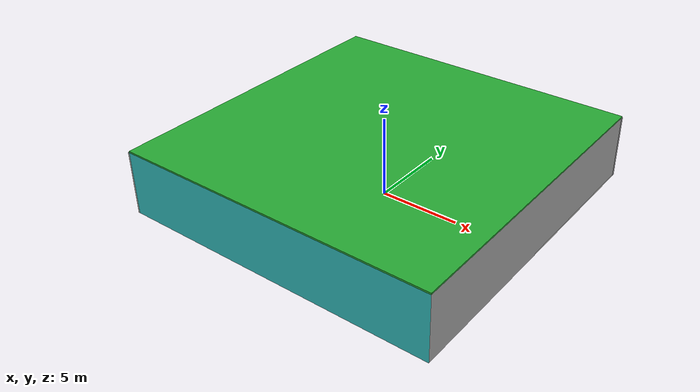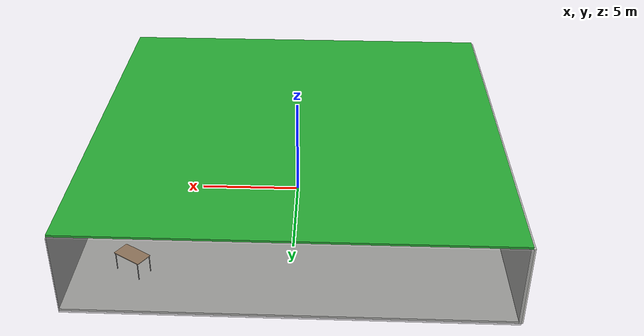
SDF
<sdf version="1.4">
 <world name="default">
  <physics type="ode">
   <max_step_size>0.001</max_step_size>
   <real_time_factor>1</real_time_factor>
   <real_time_update_rate>1000</real_time_update_rate>
   <gravity>0 0 -9.8</gravity>
  </physics>
  <scene><ambient>0.4 0.4 0.4 1</ambient><background>0.7 0.7 0.7 1</background><shadows>1</shadows></scene>
  <model name="Surrounding">
   <static>1</static>
   <link name="Ceiling">
    <collision name="Ceiling_Collision"><geometry><box><size>20 20 0.1</size></box></geometry></collision>
    <visual name="Ceiling_Visual">
     <geometry><box><size>20 20 0.1</size></box></geometry>
     <material>
      <script><uri>file://media/materials/scripts/gazebo.material</uri><name>Gazebo/GreenGlow</name></script>
     </material>
    </visual>
    <pose>0 0 4.05 0 0 0</pose>
   </link>
   <link name="Wall_South">
    <collision name="Wall_South_Collision">
     <geometry><box><size>20 0 4</size></box></geometry>
     <pose>0 0 2 0 -0 0</pose>
    </collision>
    <visual name="Wall_South_Visual">
     <pose>0 0 2 0 -0 0</pose>
     <geometry><box><size>20 0 4</size></box></geometry>
     <material>
      <script><uri>file://media/materials/scripts/gazebo.material</uri><name>Gazebo/Turquoise</name></script>
     </material>
    </visual>
    <velocity_decay><linear>0</linear><angular>0</angular></velocity_decay>
    <pose>0 -10 0 0 -0 0</pose>
   </link>
   <link name="Wall_East">
    <collision name="Wall_21_Collision">
     <geometry><box><size>20 0 4</size></box></geometry>
     <pose>0 0 2 0 -0 0</pose>
    </collision>
    <visual name="Wall_21_Visual">
     <pose>0 0 2 0 -0 0</pose>
     <geometry><box><size>20 0 4</size></box></geometry>
     <material>
      <script><uri>file://media/materials/scripts/gazebo.material</uri><name>Gazebo/PioneerBody</name></script>
     </material>
    </visual>
    <velocity_decay><linear>0</linear><angular>0</angular></velocity_decay>
    <pose>10 0 0 0 -0 1.5708</pose>
   </link>
   <link name="Wall_North">
    <collision name="Wall_22_Collision">
     <geometry><box><size>20 0.2 4</size></box></geometry>
     <pose>0 0 2 0 -0 0</pose>
    </collision>
    <visual name="Wall_22_Visual">
     <pose>0 0 2 0 -0 0</pose>
     <geometry><box><size>20 0.2 4</size></box></geometry>
     <material>
      <script><uri>file://media/materials/scripts/gazebo.material</uri><name>Gazebo/GreyTransparent</name></script>
     </material>
    </visual>
    <velocity_decay><linear>0</linear><angular>0</angular></velocity_decay>
    <pose>0 10 0 0 -0 0</pose>
   </link>
   <link name="Wall_West">
    <collision name="Wall_23_Collision">
     <geometry><box><size>20 0.2 4</size></box></geometry>
     <pose>0 0 2 0 -0 0</pose>
    </collision>
    <visual name="Wall_23_Visual">
     <pose>0 0 2 0 -0 0</pose>
     <geometry><box><size>20 0.2 4</size></box></geometry>
     <material>
      <script><uri>file://media/materials/scripts/gazebo.material</uri><name>Gazebo/CeilingTiled</name></script>
     </material>
    </visual>
    <velocity_decay><linear>0</linear><angular>0</angular></velocity_decay>
    <pose>-10 0 0 0 0 -1.5708</pose>
   </link>
   <link name="Ground_link">
    <collision name="collision">
     <pose>0 0 .05 0 -0 0</pose>
     <geometry><box><size>20 20 0.1</size></box></geometry>
    </collision>
    <visual name="visual">
     <pose>0 0 .05 0 -0 0</pose>
     <geometry><box><size>20 20 0.1</size></box></geometry>
     <material>
      <script><uri>file://media/materials/scripts/gazebo.material</uri><name>Gazebo/CeilingTiled</name></script>
     </material>
    </visual>
   </link>
   <static>1</static>
  </model>
  <spherical_coordinates>
   <surface_model>EARTH_WGS84</surface_model>
   <latitude_deg>0</latitude_deg>
   <longitude_deg>0</longitude_deg>
   <elevation>0</elevation>
   <heading_deg>0</heading_deg>
  </spherical_coordinates>
  <light name="lightball_0" type="diffuse">
   <diffuse>0.8 0.8 0.8 1</diffuse>
   <specular>0.2 0.2 0.2 1</specular>
   <attenuation>
    <range>100</range>
    <constant>0.7</constant>
    <linear>0.01</linear>
    <quadratic>0.001</quadratic>
   </attenuation>
   <direction>-0.5 0.1 -0.9</direction>
   <pose>5.04072717 4.91116172056 3.74500553672 0 0 0</pose>
  </light>
  <light name="lightball_1" type="diffuse">
   <diffuse>0.8 0.8 0.8 1</diffuse>
   <specular>0.2 0.2 0.2 1</specular>
   <attenuation>
    <range>100</range>
    <constant>0.7</constant>
    <linear>0.01</linear>
    <quadratic>0.001</quadratic>
   </attenuation>
   <direction>-0.5 0.1 -0.9</direction>
   <pose>9.10117490745 8.68618808226 1.4735310828 0 0 0</pose>
  </light>
  <light name="lightball_2" type="diffuse">
   <diffuse>0.8 0.8 0.8 1</diffuse>
   <specular>0.2 0.2 0.2 1</specular>
   <attenuation>
    <range>100</range>
    <constant>0.7</constant>
    <linear>0.01</linear>
    <quadratic>0.001</quadratic>
   </attenuation>
   <direction>-0.5 0.1 -0.9</direction>
   <pose>3.24244636727 -2.66610503041 2.77995556639 0 0 0</pose>
  </light>
  <light name="lightball_3" type="diffuse">
   <diffuse>0.8 0.8 0.8 1</diffuse>
   <specular>0.2 0.2 0.2 1</specular>
   <attenuation>
    <range>100</range>
    <constant>0.7</constant>
    <linear>0.01</linear>
    <quadratic>0.001</quadratic>
   </attenuation>
   <direction>-0.5 0.1 -0.9</direction>
   <pose>8.7577806963 3.12345109986 1.2869460033 0 0 0</pose>
  </light>
  <light name="lightball_4" type="diffuse">
   <diffuse>0.8 0.8 0.8 1</diffuse>
   <specular>0.2 0.2 0.2 1</specular>
   <attenuation>
    <range>100</range>
    <constant>0.7</constant>
    <linear>0.01</linear>
    <quadratic>0.001</quadratic>
   </attenuation>
   <direction>-0.5 0.1 -0.9</direction>
   <pose>-3.97331627206 -8.94163442057 2.28829018818 0 0 0</pose>
  </light>
  <light name="lightball_5" type="diffuse">
   <diffuse>0.8 0.8 0.8 1</diffuse>
   <specular>0.2 0.2 0.2 1</specular>
   <attenuation>
    <range>100</range>
    <constant>0.7</constant>
    <linear>0.01</linear>
    <quadratic>0.001</quadratic>
   </attenuation>
   <direction>-0.5 0.1 -0.9</direction>
   <pose>2.35235097821 -5.92058168312 3.3039820592 0 0 0</pose>
  </light>
  <light name="lightball_6" type="diffuse">
   <diffuse>0.8 0.8 0.8 1</diffuse>
   <specular>0.2 0.2 0.2 1</specular>
   <attenuation>
    <range>100</range>
    <constant>0.7</constant>
    <linear>0.01</linear>
    <quadratic>0.001</quadratic>
   </attenuation>
   <direction>-0.5 0.1 -0.9</direction>
   <pose>-9.32447929374 3.26893113501 3.84568607836 0 0 0</pose>
  </light>
  <light name="lightball_7" type="diffuse">
   <diffuse>0.8 0.8 0.8 1</diffuse>
   <specular>0.2 0.2 0.2 1</specular>
   <attenuation>
    <range>100</range>
    <constant>0.7</constant>
    <linear>0.01</linear>
    <quadratic>0.001</quadratic>
   </attenuation>
   <direction>-0.5 0.1 -0.9</direction>
   <pose>-0.664956922512 -8.40086091194 1.16436267897 0 0 0</pose>
  </light>
  <light name="lightball_8" type="diffuse">
   <diffuse>0.8 0.8 0.8 1</diffuse>
   <specular>0.2 0.2 0.2 1</specular>
   <attenuation>
    <range>100</range>
    <constant>0.7</constant>
    <linear>0.01</linear>
    <quadratic>0.001</quadratic>
   </attenuation>
   <direction>-0.5 0.1 -0.9</direction>
   <pose>0.613000948062 1.96153554881 2.4362891305 0 0 0</pose>
  </light>
  <include><uri>model://cabinet</uri><pose>-6.37177762147 -3.76366854147 0 0 0 0.233842357307</pose></include>
  <include>
   <uri>model://robocup_3Dsim_goal</uri>
   <pose>-0.941992980706 -2.01209560454 0 0 0 1.6589440791</pose>
  </include>
  <include>
   <uri>model://construction_cone</uri>
   <pose>-1.88923627946 3.91797071311 0 0 0 2.32023798959</pose>
  </include>
  <include><uri>model://cabinet</uri><pose>5.68471647716 -4.96198955211 0 0 0 0.918413924616</pose></include>
  <include><uri>model://table</uri><pose>3.38816338409 -1.21176546483 0 0 0 1.56736439159</pose></include>
  <include><uri>model://table</uri><pose>7.26985702833 7.19791551671 0 0 0 2.5700005704</pose></include>
 </world>
</sdf>

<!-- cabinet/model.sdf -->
<sdf version="1.5">
  <model name="cabinet">
    <static>true</static>
    <link name="cabinet_bottom_plate">
      <inertial>
        <pose>0 0 -1 0 0 0</pose>
        <inertia>
          <ixx>2.050000</ixx>
          <ixy>0</ixy>
          <ixz>0</ixz>
          <iyy>2.050000</iyy>
          <iyz>0</iyz>
          <izz>2.050000</izz>
        </inertia>
        <mass>25.000000</mass>
      </inertial>
      <collision name="cabinet_bottom_plate_geom">
        <pose>0 0 0.010000 0 0 0</pose>
        <geometry>
          <box>
            <size>0.450000 0.450000 0.020000</size>
          </box>
        </geometry>
      </collision>
      <visual name="cabinet_bottom_plate_geom_visual">
        <pose>0 0 0.010000 0 0 0</pose>
        <geometry>
          <box>
            <size>0.450000 0.450000 0.020000</size>
          </box>
        </geometry>
        <material>
          <script>
            <uri>model://media/materials/scripts/gazebo.material</uri>
            <name>Gazebo/Wood</name>
          </script>
        </material>
      </visual>
      <collision name="cabinet_bottom_plate_geom_cabinet_back_plate">
        <pose>0.235000 0 0.510000 0 0 0</pose>
        <geometry>
          <box>
            <size>0.020000 0.450000 1.020000</size>
          </box>
        </geometry>
      </collision>
      <visual name="cabinet_bottom_plate_geom_cabinet_back_plate_visual">
        <pose>0.235000 0 0.510000 0 0 0</pose>
        <geometry>
          <box>
            <size>0.020000 0.450000 1.020000</size>
          </box>
        </geometry>
        <material>
          <script>
            <uri>model://media/materials/scripts/gazebo.material</uri>
            <name>Gazebo/Wood</name>
          </script>
        </material>
      </visual>
      <collision name="cabinet_bottom_plate_geom_cabinet_left_plate">
        <pose>0 0.235000 0.510000 0 0 0</pose>
        <geometry>
          <box>
            <size>0.450000 0.020000 1.020000</size>
          </box>
        </geometry>
      </collision>
      <visual name="cabinet_bottom_plate_geom_cabinet_left_plate_visual">
        <pose>0 0.235000 0.510000 0 0 0</pose>
        <geometry>
          <box>
            <size>0.450000 0.020000 1.020000</size>
          </box>
        </geometry>
        <material>
          <script>
            <uri>model://media/materials/scripts/gazebo.material</uri>
            <name>Gazebo/Wood</name>
          </script>
        </material>
      </visual>
      <collision name="cabinet_bottom_plate_geom_cabinet_middle_plate">
        <pose>0 0 0.510000 0 0 0</pose>
        <geometry>
          <box>
            <size>0.450000 0.450000 0.020000</size>
          </box>
        </geometry>
      </collision>
      <visual name="cabinet_bottom_plate_geom_cabinet_middle_plate_visual">
        <pose>0 0 0.510000 0 0 0</pose>
        <geometry>
          <box>
            <size>0.450000 0.450000 0.020000</size>
          </box>
        </geometry>
        <material>
          <script>
            <uri>model://media/materials/scripts/gazebo.material</uri>
            <name>Gazebo/Wood</name>
          </script>
        </material>
      </visual>
      <collision name="cabinet_bottom_plate_geom_cabinet_right_plate">
        <pose>0 -0.235000 0.510000 0 0 0</pose>
        <geometry>
          <box>
            <size>0.450000 0.020000 1.020000</size>
          </box>
        </geometry>
      </collision>
      <visual name="cabinet_bottom_plate_geom_cabinet_right_plate_visual">
        <pose>0 -0.235000 0.510000 0 0 0</pose>
        <geometry>
          <box>
            <size>0.450000 0.020000 1.020000</size>
          </box>
        </geometry>
        <material>
          <script>
            <uri>model://media/materials/scripts/gazebo.material</uri>
            <name>Gazebo/Wood</name>
          </script>
        </material>
      </visual>
      <collision name="cabinet_bottom_plate_geom_cabinet_top_plate">
        <pose>0 0 1.010000 0 0 0</pose>
        <geometry>
          <box>
            <size>0.450000 0.450000 0.020000</size>
          </box>
        </geometry>
      </collision>
      <visual name="cabinet_bottom_plate_geom_cabinet_top_plate_visual">
        <pose>0 0 1.010000 0 0 0</pose>
        <geometry>
          <box>
            <size>0.450000 0.450000 0.020000</size>
          </box>
        </geometry>
        <material>
          <script>
            <uri>model://media/materials/scripts/gazebo.material</uri>
            <name>Gazebo/Wood</name>
          </script>
        </material>
      </visual>
    </link>
  </model>
</sdf>

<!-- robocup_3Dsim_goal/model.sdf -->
<sdf version="1.5">
  <model name="robocup_3d_goal">
    <static>true</static>
    <link name="left_post">
      <pose>0 1.05 0.45 0 0 0</pose>
      <collision name="collision">
        <geometry>
          <cylinder>
            <radius>0.05</radius>
            <length>0.9</length>
          </cylinder>
        </geometry>
      </collision>
      <visual name="visual">
        <geometry>
          <cylinder>
            <radius>0.05</radius>
            <length>0.9</length>
          </cylinder>
        </geometry>
        <material>
          <script>
            <uri>file://media/materials/scripts/gazebo.material</uri>
            <name>Gazebo/ZincYellow</name>
          </script>
        </material>
      </visual>
    </link>
    <link name="left_support_horiz_lower">
      <pose>0.30 1.05 0.01 0 0 0</pose>
      <collision name="collision">
        <geometry>
          <box>
            <size>0.50 0.02 0.02</size>
          </box>
        </geometry>
      </collision>
      <visual name="visual">
        <geometry>
          <box>
            <size>0.50 0.02 0.02</size>
          </box>
        </geometry>
        <material>
          <script>
            <uri>file://media/materials/scripts/gazebo.material</uri>
            <name>Gazebo/White</name>
          </script>
        </material>
      </visual>
    </link>
    <link name="left_support_horiz_upper">
      <pose>0.30 1.05 0.79 0 0 0</pose>
      <collision name="collision">
        <geometry>
          <box>
            <size>0.50 0.02 0.02</size>
          </box>
        </geometry>
      </collision>
      <visual name="visual">
        <geometry>
          <box>
            <size>0.50 0.02 0.02</size>
          </box>
        </geometry>
        <material>
          <script>
            <uri>file://media/materials/scripts/gazebo.material</uri>
            <name>Gazebo/White</name>
          </script>
        </material>
      </visual>
    </link>
    <link name="left_support_vertical">
      <pose>0.56 1.05 0.4 0 1.5708 0</pose>
      <collision name="collision">
        <geometry>
          <box>
            <size>0.80 0.02 0.02</size>
          </box>
        </geometry>
      </collision>
      <visual name="visual">
        <geometry>
          <box>
            <size>0.80 0.02 0.02</size>
          </box>
        </geometry>
        <material>
          <script>
            <uri>file://media/materials/scripts/gazebo.material</uri>
            <name>Gazebo/White</name>
          </script>
        </material>
      </visual>
    </link>
    <link name="right_support_horiz_lower">
      <pose>0.30 -1.05 0.01 0 0 0</pose>
      <collision name="collision">
        <geometry>
          <box>
            <size>0.50 0.02 0.02</size>
          </box>
        </geometry>
      </collision>
      <visual name="visual">
        <geometry>
          <box>
            <size>0.50 0.02 0.02</size>
          </box>
        </geometry>
        <material>
          <script>
            <uri>file://media/materials/scripts/gazebo.material</uri>
            <name>Gazebo/White</name>
          </script>
        </material>
      </visual>
    </link>
    <link name="right_support_horiz_upper">
      <pose>0.30 -1.05 0.79 0 0 0</pose>
      <collision name="collision">
        <geometry>
          <box>
            <size>0.50 0.02 0.02</size>
          </box>
        </geometry>
      </collision>
      <visual name="visual">
        <geometry>
          <box>
            <size>0.50 0.02 0.02</size>
          </box>
        </geometry>
        <material>
          <script>
            <uri>file://media/materials/scripts/gazebo.material</uri>
            <name>Gazebo/White</name>
          </script>
        </material>
      </visual>
    </link>
    <link name="right_support_vertical">
      <pose>0.56 -1.05 0.4 0 1.5708 0</pose>
      <collision name="collision">
        <geometry>
          <box>
            <size>0.80 0.02 0.02</size>
          </box>
        </geometry>
      </collision>
      <visual name="visual">
        <geometry>
          <box>
            <size>0.80 0.02 0.02</size>
          </box>
        </geometry>
        <material>
          <script>
            <uri>file://media/materials/scripts/gazebo.material</uri>
            <name>Gazebo/White</name>
          </script>
        </material>
      </visual>
    </link>
    <link name="center_support_horiz_lower">
      <pose>0.56 0 0.01 0 1.5708 0</pose>
      <collision name="collision">
        <geometry>
          <box>
            <size>0.02 2.08 0.02</size>
          </box>
        </geometry>
      </collision>
      <visual name="visual">
        <geometry>
          <box>
            <size>0.02 2.08 0.02</size>
          </box>
        </geometry>
        <material>
          <script>
            <uri>file://media/materials/scripts/gazebo.material</uri>
            <name>Gazebo/White</name>
          </script>
        </material>
      </visual>
    </link>
    <link name="center_support_horiz_upper">
      <pose>0.56 0 0.79 0 1.5708 0</pose>
      <collision name="collision">
        <geometry>
          <box>
            <size>0.02 2.08 0.02</size>
          </box>
        </geometry>
      </collision>
      <visual name="visual">
        <geometry>
          <box>
            <size>0.02 2.08 0.02</size>
          </box>
        </geometry>
        <material>
          <script>
            <uri>file://media/materials/scripts/gazebo.material</uri>
            <name>Gazebo/White</name>
          </script>
        </material>
      </visual>
    </link>
    <link name="right_post">
      <pose>0 -1.05 0.45 0 0 0</pose>
      <collision name="collision">
        <geometry>
          <cylinder>
            <radius>0.05</radius>
            <length>0.9</length>
          </cylinder>
        </geometry>
      </collision>
      <visual name="visual">
        <geometry>
          <cylinder>
            <radius>0.05</radius>
            <length>0.9</length>
          </cylinder>
        </geometry>
        <material>
          <script>
            <uri>file://media/materials/scripts/gazebo.material</uri>
            <name>Gazebo/ZincYellow</name>
          </script>
        </material>
      </visual>
    </link>
    <link name="crossbar">
      <pose>0 0 0.85 1.57 1.57 0</pose>
      <collision name="collision">
        <geometry>
          <cylinder>
            <radius>0.05</radius>
            <length>2.0</length>
          </cylinder>
        </geometry>
      </collision>
      <visual name="visual">
        <geometry>
          <cylinder>
            <radius>0.05</radius>
            <length>2.0</length>
          </cylinder>
        </geometry>
        <material>
          <script>
            <uri>file://media/materials/scripts/gazebo.material</uri>
            <name>Gazebo/ZincYellow</name>
          </script>
        </material>
      </visual>
    </link>
    <link name="center_net">
      <pose>0.56 0 0.40 0 0 0</pose>
      <collision name="collision">
        <geometry>
          <box>
            <size>0.01 2.1 0.80</size>
          </box>
        </geometry>
      </collision>
      <visual name="visual">
        <geometry>
          <box>
            <size>0.01 2.1 0.80</size>
          </box>
        </geometry>
        <material>
          <script>
            <uri>model://../model_source/models/robocup09_spl_field/materials/scripts/</uri>
            <uri>model://../model_source/models/robocup09_spl_field/materials/textures/</uri>
            <name>RoboCup/Net</name>
          </script>
        </material>
      </visual>
    </link>
    <link name="left_net">
      <pose>0.30 1.05 0.40 0 0 0</pose>
      <collision name="collision">
        <geometry>
          <box>
            <size>0.50 0.01 0.76</size>
          </box>
        </geometry>
      </collision>
      <visual name="visual">
        <geometry>
          <box>
            <size>0.50 0.01 0.76</size>
          </box>
        </geometry>
        <material>
          <script>
            <uri>model://../model_source/models/robocup09_spl_field/materials/scripts/</uri>
            <uri>model://../model_source/models/robocup09_spl_field/materials/textures/</uri>
            <name>RoboCup/Net</name>
          </script>
        </material>
      </visual>
    </link>
    <link name="right_net">
      <pose>0.30 -1.05 0.40 0 0 0</pose>
      <collision name="collision">
        <geometry>
          <box>
            <size>0.50 0.01 0.76</size>
          </box>
        </geometry>
      </collision>
      <visual name="visual">
        <geometry>
          <box>
            <size>0.50 0.01 0.76</size>
          </box>
        </geometry>
        <material>
          <script>
            <uri>model://../model_source/models/robocup09_spl_field/materials/scripts/</uri>
            <uri>model://../model_source/models/robocup09_spl_field/materials/textures/</uri>
            <name>RoboCup/Net</name>
          </script>
        </material>
      </visual>
    </link>
  </model>
</sdf>

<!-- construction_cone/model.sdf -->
<sdf version="1.5">
  <model name="Construction Cone">
    <link name="link">
      <collision name="collision">
        <geometry>
          <mesh>
            <scale>10 10 10</scale>
            <uri>file://isr-testbed/construction_cone/meshes/construction_cone.dae</uri>
          </mesh>
        </geometry>
      </collision>
      <visual name="visual">
        <geometry>
          <mesh>
            <scale>10 10 10</scale>
            <uri>file://isr-testbed/construction_cone/meshes/construction_cone.dae</uri>
          </mesh>
        </geometry>
      </visual>
    </link>
  </model>
</sdf>

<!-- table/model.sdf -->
<sdf version="1.5">
  <model name="table">
    <static>true</static>
    <link name="link">
      <collision name="surface">
        <pose>0 0 1.0 0 0 0</pose>
        <geometry>
          <box>
            <size>1.5 0.8 0.03</size>
          </box>
        </geometry>
        <surface>
          <friction>
            <ode>
              <mu>0.6</mu>
              <mu2>0.6</mu2>
            </ode>
          </friction>
        </surface>
      </collision>
      <visual name="visual1">
        <pose>0 0 1.0 0 0 0</pose>
        <geometry>
          <box>
            <size>1.5 0.8 0.03</size>
          </box>
        </geometry>
        <material>
          <script>
            <uri>model://media/materials/scripts/gazebo.material</uri>
            <name>Gazebo/Wood</name>
          </script>
        </material>
      </visual>
      <collision name="front_left_leg">
        <pose>0.68 0.38 0.5 0 0 0</pose>
        <geometry>
          <cylinder>
            <radius>0.02</radius>
            <length>1.0</length>
          </cylinder>
        </geometry>
      </collision>
      <visual name="front_left_leg">
        <pose>0.68 0.38 0.5 0 0 0</pose>
        <geometry>
          <cylinder>
            <radius>0.02</radius>
            <length>1.0</length>
          </cylinder>
        </geometry>
        <material>
          <script>
            <uri>model://media/materials/scripts/gazebo.material</uri>
            <name>Gazebo/Grey</name>
          </script>
        </material>
      </visual>
      <collision name="front_right_leg">
        <pose>0.68 -0.38 0.5 0 0 0</pose>
        <geometry>
          <cylinder>
            <radius>0.02</radius>
            <length>1.0</length>
          </cylinder>
        </geometry>
      </collision>
      <visual name="front_right_leg">
        <pose>0.68 -0.38 0.5 0 0 0</pose>
        <geometry>
          <cylinder>
            <radius>0.02</radius>
            <length>1.0</length>
          </cylinder>
        </geometry>
        <material>
          <script>
            <uri>model://media/materials/scripts/gazebo.material</uri>
            <name>Gazebo/Grey</name>
          </script>
        </material>
      </visual>
      <collision name="back_right_leg">
        <pose>-0.68 -0.38 0.5 0 0 0</pose>
        <geometry>
          <cylinder>
            <radius>0.02</radius>
            <length>1.0</length>
          </cylinder>
        </geometry>
      </collision>
      <visual name="back_right_leg">
        <pose>-0.68 -0.38 0.5 0 0 0</pose>
        <geometry>
          <cylinder>
            <radius>0.02</radius>
            <length>1.0</length>
          </cylinder>
        </geometry>
        <material>
          <script>
            <uri>model://media/materials/scripts/gazebo.material</uri>
            <name>Gazebo/Grey</name>
          </script>
        </material>
      </visual>
      <collision name="back_left_leg">
        <pose>-0.68 0.38 0.5 0 0 0</pose>
        <geometry>
          <cylinder>
            <radius>0.02</radius>
            <length>1.0</length>
          </cylinder>
        </geometry>
      </collision>
      <visual name="back_left_leg">
        <pose>-0.68 0.38 0.5 0 0 0</pose>
        <geometry>
          <cylinder>
            <radius>0.02</radius>
            <length>1.0</length>
          </cylinder>
        </geometry>
        <material>
          <script>
            <uri>model://media/materials/scripts/gazebo.material</uri>
            <name>Gazebo/Grey</name>
          </script>
        </material>
      </visual>
    </link>
  </model>
</sdf>
